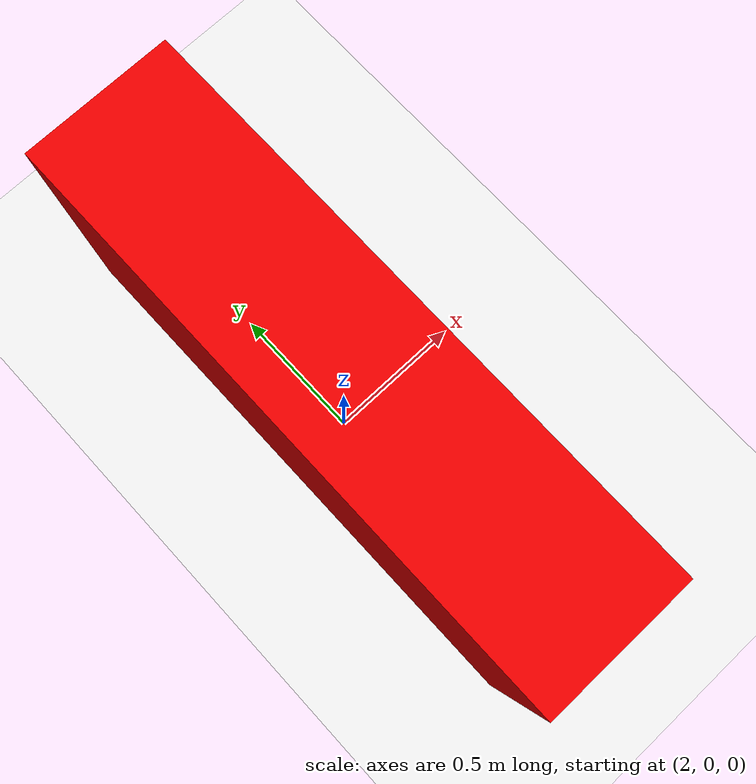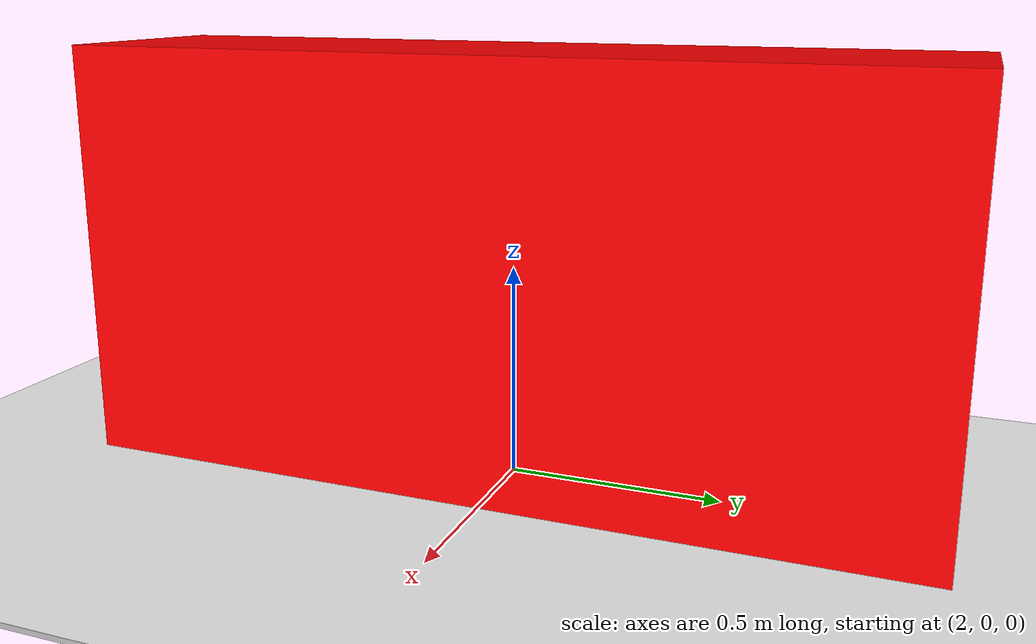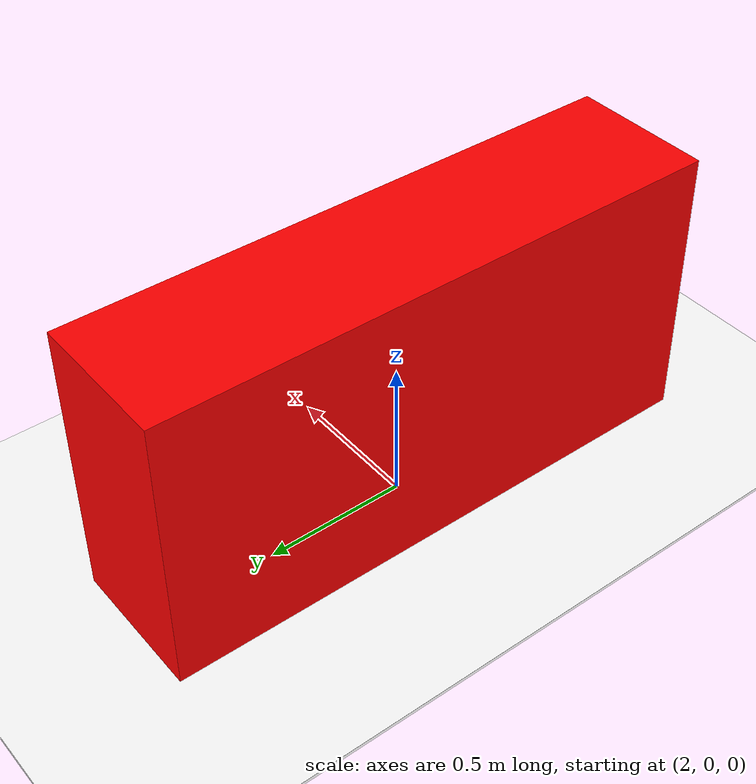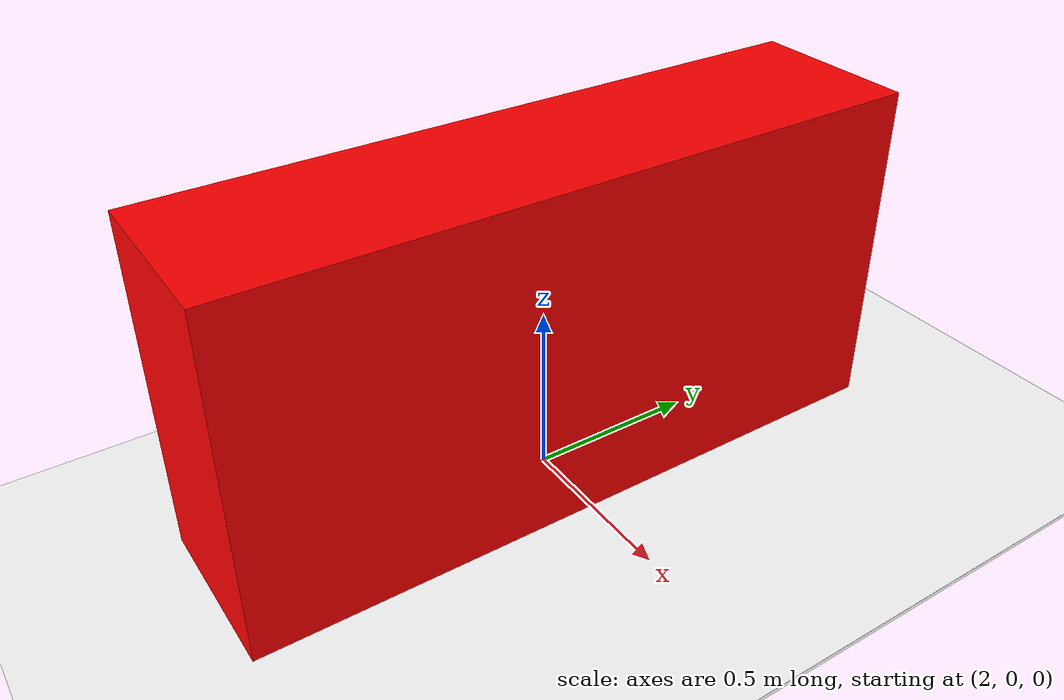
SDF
<?xml version="1.0" ?>
<sdf version="1.6">
  <world name="zov_world">

    <physics name="1ms" type="physics">
      <max_step_size>0.001</max_step_size>
      <real_time_factor>1.0</real_time_factor>
    </physics>

    <plugin
      filename="gz-sim-sensors-system"
      name="gz::sim::systems::Sensors">
      <render_engine>ogre</render_engine>
    </plugin>

    <plugin
      filename="gz-sim-physics-system"
      name="gz::sim::systems::Physics">
    </plugin>
    <plugin
      filename="gz-sim-user-commands-system"
      name="gz::sim::systems::UserCommands">
    </plugin>
    <plugin
      filename="gz-sim-scene-broadcaster-system"
      name="gz::sim::systems::SceneBroadcaster">
    </plugin>

    <light type="directional" name="sun">
      <cast_shadows>true</cast_shadows>
      <pose>0 0 10 0 0 0</pose>
      <diffuse>0.8 0.8 0.8 1</diffuse>
      <specular>0.2 0.2 0.2 1</specular>
      <direction>-0.5 0.1 -0.9</direction>
    </light>

    <model name="ground_plane">
      <static>true</static>
      <link name="link">
        <collision name="collision">
          <geometry><plane><normal>0 0 1</normal><size>100 100</size></plane></geometry>
        </collision>
        <visual name="visual">
          <geometry><plane><normal>0 0 1</normal><size>100 100</size></plane></geometry>
          <material>
            <ambient>0.8 0.8 0.8 1</ambient>
            <diffuse>0.8 0.8 0.8 1</diffuse>
            <specular>0.8 0.8 0.8 1</specular>
          </material>
        </visual>
      </link>
    </model>

    <model name="test_wall">
      <pose>2 0 0.5 0 0 0</pose> <static>true</static>
      <link name="link">
        <collision name="collision"><geometry><box><size>0.5 2.0 1.0</size></box></geometry></collision>
        <visual name="visual"><geometry><box><size>0.5 2.0 1.0</size></box></geometry><material><ambient>1 0 0 1</ambient></material></visual>
      </link>
    </model>

    <include>
      <uri>model://zov_ground_decal</uri>
      <pose>2 0 0.01 0 0 0</pose>
    </include>

  </world>
</sdf>

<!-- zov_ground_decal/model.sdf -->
<sdf version="1.6">
  <model name="zov_ground_decal">
    <static>true</static>
    <link name="link">
      <visual name="visual">
        <cast_shadows>false</cast_shadows>
        <geometry>
          <box>
            <size>10.0 10.0 0.001</size>
          </box>
        </geometry>
        <material>
            <ambient>1 1 1 1</ambient>
            <diffuse>1 1 1 1</diffuse>
            <specular>0 0 0 1</specular> <pbr>
                <metal>
                <albedo_map>model://zov_ground_decal/materials/textures/zov_texture.png</albedo_map>
                <roughness>0.9</roughness>
                <metalness>0.0</metalness>
                </metal>
            </pbr>
        </material>
      </visual>

      <collision name="collision">
        <geometry>
          <box>
            <size>10.0 10.0 0.001</size>
          </box>
        </geometry>
        <surface>
            <contact>
                <collide_bitmask>0xffff</collide_bitmask>
            </contact>
            <friction>
              <ode>
                <mu>1.0</mu>
                <mu2>1.0</mu2>
              </ode>
            </friction>
        </surface>
      </collision>
    </link>
  </model>
</sdf>
